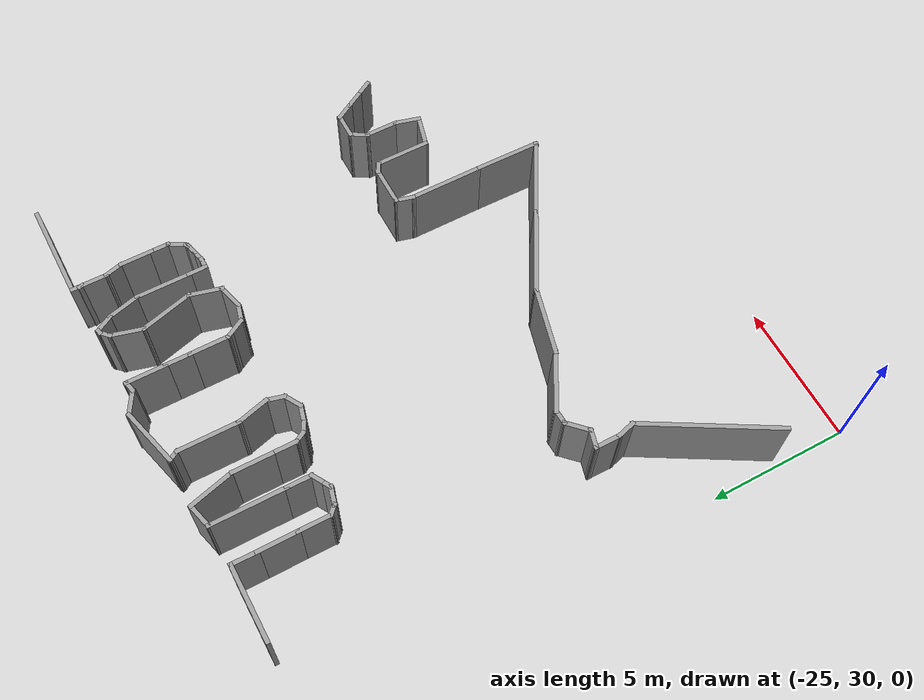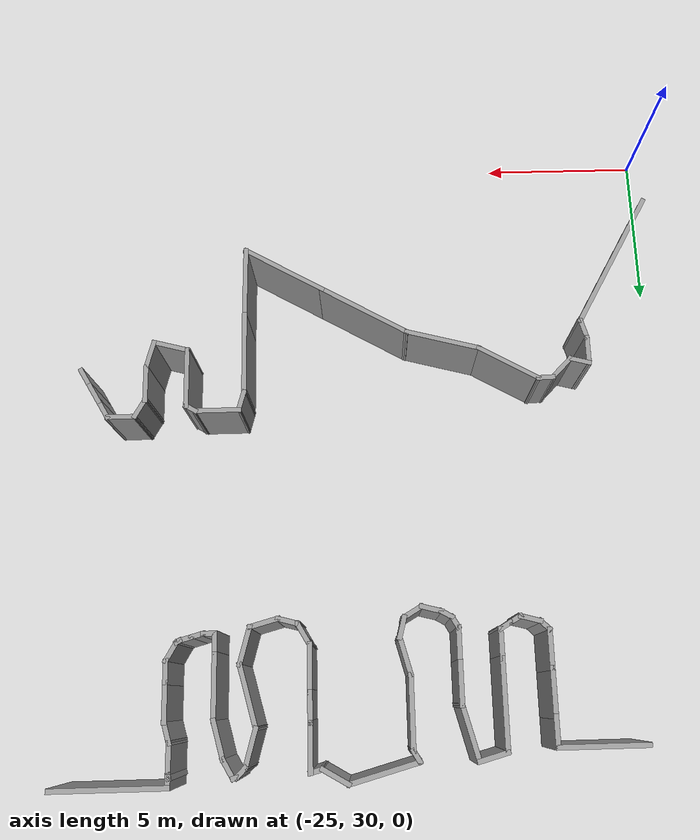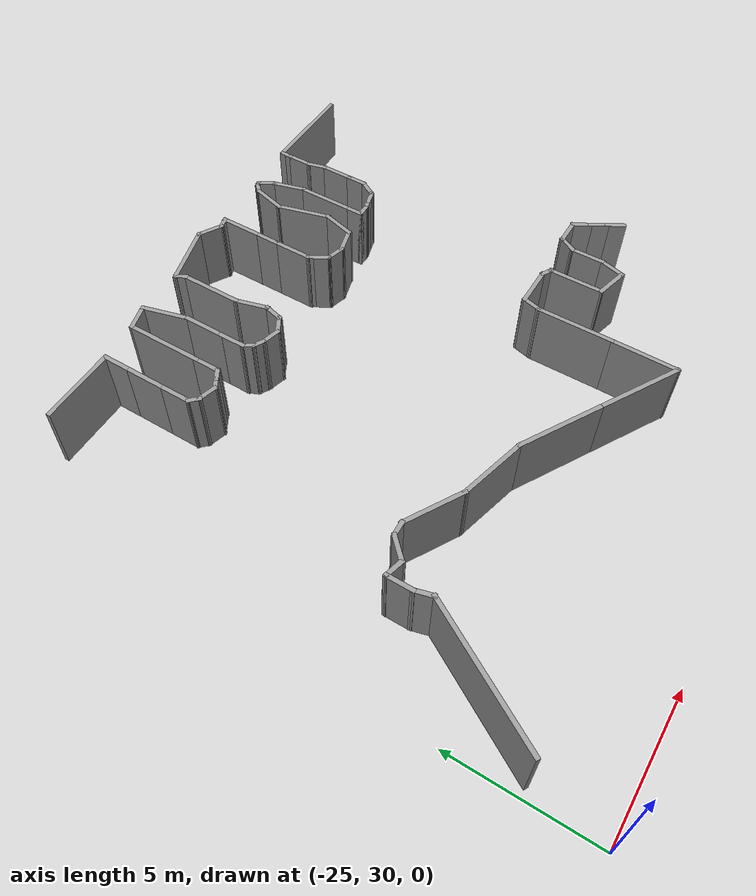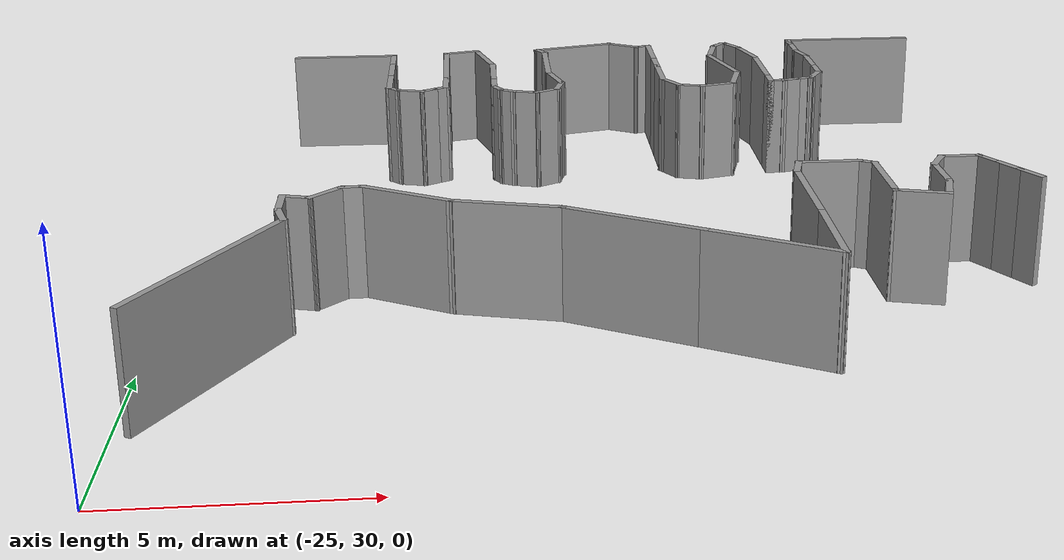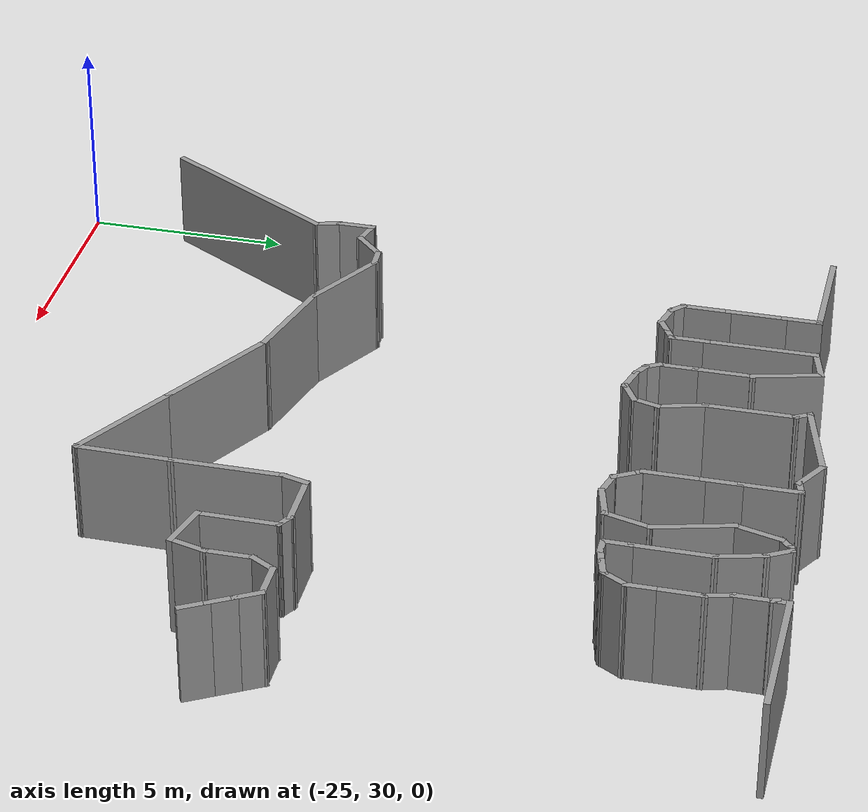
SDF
<sdf version="1.7">
 <model name="office_track1">
  <pose>2.3626 4.43866 0 0 -0 0</pose>
  <link name="Wall_265">
   <collision name="Wall_265_Collision">
    <geometry><box><size>0.75 0.15 2.5</size></box></geometry>
    <pose>0 0 1.25 0 -0 0</pose>
   </collision>
   <visual name="Wall_265_Visual">
    <pose>0 0 1.25 0 -0 0</pose>
    <geometry><box><size>0.75 0.15 2.5</size></box></geometry>
    <material>
     <script><uri>file://media/materials/scripts/gazebo.material</uri><name>Gazebo/Grey</name></script>
     <ambient>1 1 1 1</ambient>
    </material>
    <meta><layer>0</layer></meta>
   </visual>
   <pose>-8.85327 33.8795 0 0 -0 2.0944</pose>
  </link>
  <link name="Wall_266">
   <collision name="Wall_266_Collision">
    <geometry><box><size>0.75 0.15 2.5</size></box></geometry>
    <pose>0 0 1.25 0 -0 0</pose>
   </collision>
   <visual name="Wall_266_Visual">
    <pose>0 0 1.25 0 -0 0</pose>
    <geometry><box><size>0.75 0.15 2.5</size></box></geometry>
    <material>
     <script><uri>file://media/materials/scripts/gazebo.material</uri><name>Gazebo/Grey</name></script>
     <ambient>1 1 1 1</ambient>
    </material>
    <meta><layer>0</layer></meta>
   </visual>
   <pose>-9.15327 34.3991 0 0 -0 2.0944</pose>
  </link>
  <link name="Wall_267">
   <collision name="Wall_267_Collision">
    <geometry><box><size>0.75 0.15 2.5</size></box></geometry>
    <pose>0 0 1.25 0 -0 0</pose>
   </collision>
   <visual name="Wall_267_Visual">
    <pose>0 0 1.25 0 -0 0</pose>
    <geometry><box><size>0.75 0.15 2.5</size></box></geometry>
    <material>
     <script><uri>file://media/materials/scripts/gazebo.material</uri><name>Gazebo/Grey</name></script>
     <ambient>1 1 1 1</ambient>
    </material>
    <meta><layer>0</layer></meta>
   </visual>
   <pose>-9.45327 34.9187 0 0 -0 2.0944</pose>
  </link>
  <link name="Wall_268">
   <collision name="Wall_268_Collision">
    <geometry><box><size>1 0.15 2.5</size></box></geometry>
    <pose>0 0 1.25 0 -0 0</pose>
   </collision>
   <visual name="Wall_268_Visual">
    <pose>0 0 1.25 0 -0 0</pose>
    <geometry><box><size>1 0.15 2.5</size></box></geometry>
    <material>
     <script><uri>file://media/materials/scripts/gazebo.material</uri><name>Gazebo/Grey</name></script>
     <ambient>1 1 1 1</ambient>
    </material>
    <meta><layer>0</layer></meta>
   </visual>
   <pose>-10.0283 35.1785 0 0 -0 3.14159</pose>
  </link>
  <link name="Wall_269">
   <collision name="Wall_269_Collision">
    <geometry><box><size>0.75 0.15 2.5</size></box></geometry>
    <pose>0 0 1.25 0 -0 0</pose>
   </collision>
   <visual name="Wall_269_Visual">
    <pose>0 0 1.25 0 -0 0</pose>
    <geometry><box><size>0.75 0.15 2.5</size></box></geometry>
    <material>
     <script><uri>file://media/materials/scripts/gazebo.material</uri><name>Gazebo/Grey</name></script>
     <ambient>1 1 1 1</ambient>
    </material>
    <meta><layer>0</layer></meta>
   </visual>
   <pose>-10.6033 34.9187 0 0 -0 -2.0944</pose>
  </link>
  <link name="Wall_270">
   <collision name="Wall_270_Collision">
    <geometry><box><size>1.25 0.15 2.5</size></box></geometry>
    <pose>0 0 1.25 0 -0 0</pose>
   </collision>
   <visual name="Wall_270_Visual">
    <pose>0 0 1.25 0 -0 0</pose>
    <geometry><box><size>1.25 0.15 2.5</size></box></geometry>
    <material>
     <script><uri>file://media/materials/scripts/gazebo.material</uri><name>Gazebo/Grey</name></script>
     <ambient>1 1 1 1</ambient>
    </material>
    <meta><layer>0</layer></meta>
   </visual>
   <pose>-10.7533 34.1089 0 0 -0 -1.5708</pose>
  </link>
  <link name="Wall_271">
   <collision name="Wall_271_Collision">
    <geometry><box><size>1 0.15 2.5</size></box></geometry>
    <pose>0 0 1.25 0 -0 0</pose>
   </collision>
   <visual name="Wall_271_Visual">
    <pose>0 0 1.25 0 -0 0</pose>
    <geometry><box><size>1 0.15 2.5</size></box></geometry>
    <material>
     <script><uri>file://media/materials/scripts/gazebo.material</uri><name>Gazebo/Grey</name></script>
     <ambient>1 1 1 1</ambient>
    </material>
    <meta><layer>0</layer></meta>
   </visual>
   <pose>-10.8633 33.1484 0 0 -0 -1.8326</pose>
  </link>
  <link name="Wall_272">
   <collision name="Wall_272_Collision">
    <geometry><box><size>1.25 0.15 2.5</size></box></geometry>
    <pose>0 0 1.25 0 -0 0</pose>
   </collision>
   <visual name="Wall_272_Visual">
    <pose>0 0 1.25 0 -0 0</pose>
    <geometry><box><size>1.25 0.15 2.5</size></box></geometry>
    <material>
     <script><uri>file://media/materials/scripts/gazebo.material</uri><name>Gazebo/Grey</name></script>
     <ambient>1 1 1 1</ambient>
    </material>
    <meta><layer>0</layer></meta>
   </visual>
   <pose>-11.5045 32.8802 0 0 -0 2.87979</pose>
  </link>
  <link name="Wall_273">
   <collision name="Wall_273_Collision">
    <geometry><box><size>2 0.15 2.5</size></box></geometry>
    <pose>0 0 1.25 0 -0 0</pose>
   </collision>
   <visual name="Wall_273_Visual">
    <pose>0 0 1.25 0 -0 0</pose>
    <geometry><box><size>2 0.15 2.5</size></box></geometry>
    <material>
     <script><uri>file://media/materials/scripts/gazebo.material</uri><name>Gazebo/Grey</name></script>
     <ambient>1 1 1 1</ambient>
    </material>
    <meta><layer>0</layer></meta>
   </visual>
   <pose>-12.0358 33.9476 0 0 -0 1.5708</pose>
  </link>
  <link name="Wall_274">
   <collision name="Wall_274_Collision">
    <geometry><box><size>0.5 0.15 2.5</size></box></geometry>
    <pose>0 0 1.25 0 -0 0</pose>
   </collision>
   <visual name="Wall_274_Visual">
    <pose>0 0 1.25 0 -0 0</pose>
    <geometry><box><size>0.5 0.15 2.5</size></box></geometry>
    <material>
     <script><uri>file://media/materials/scripts/gazebo.material</uri><name>Gazebo/Grey</name></script>
     <ambient>1 1 1 1</ambient>
    </material>
    <meta><layer>0</layer></meta>
   </visual>
   <pose>-12.1873 34.9601 0 0 -0 2.61799</pose>
  </link>
  <link name="Wall_275">
   <collision name="Wall_275_Collision">
    <geometry><box><size>1.5 0.15 2.5</size></box></geometry>
    <pose>0 0 1.25 0 -0 0</pose>
   </collision>
   <visual name="Wall_275_Visual">
    <pose>0 0 1.25 0 -0 0</pose>
    <geometry><box><size>1.5 0.15 2.5</size></box></geometry>
    <material>
     <script><uri>file://media/materials/scripts/gazebo.material</uri><name>Gazebo/Grey</name></script>
     <ambient>1 1 1 1</ambient>
    </material>
    <meta><layer>0</layer></meta>
   </visual>
   <pose>-13.0139 35.0476 0 0 -0 3.14159</pose>
  </link>
  <link name="Wall_276">
   <collision name="Wall_276_Collision">
    <geometry><box><size>0.75 0.15 2.5</size></box></geometry>
    <pose>0 0 1.25 0 -0 0</pose>
   </collision>
   <visual name="Wall_276_Visual">
    <pose>0 0 1.25 0 -0 0</pose>
    <geometry><box><size>0.75 0.15 2.5</size></box></geometry>
    <material>
     <script><uri>file://media/materials/scripts/gazebo.material</uri><name>Gazebo/Grey</name></script>
     <ambient>1 1 1 1</ambient>
    </material>
    <meta><layer>0</layer></meta>
   </visual>
   <pose>-13.7665 34.7578 0 0 -0 -1.8326</pose>
  </link>
  <link name="Wall_277">
   <collision name="Wall_277_Collision">
    <geometry><box><size>2.75 0.15 2.5</size></box></geometry>
    <pose>0 0 1.25 0 -0 0</pose>
   </collision>
   <visual name="Wall_277_Visual">
    <pose>0 0 1.25 0 -0 0</pose>
    <geometry><box><size>2.75 0.15 2.5</size></box></geometry>
    <material>
     <script><uri>file://media/materials/scripts/gazebo.material</uri><name>Gazebo/Grey</name></script>
     <ambient>1 1 1 1</ambient>
    </material>
    <meta><layer>0</layer></meta>
   </visual>
   <pose>-13.8442 33.168 0 0 -0 -1.5708</pose>
  </link>
  <link name="Wall_279">
   <collision name="Wall_279_Collision">
    <geometry><box><size>2.25 0.15 2.5</size></box></geometry>
    <pose>0 0 1.25 0 -0 0</pose>
   </collision>
   <visual name="Wall_279_Visual">
    <pose>0 0 1.25 0 -0 0</pose>
    <geometry><box><size>2.25 0.15 2.5</size></box></geometry>
    <material>
     <script><uri>file://media/materials/scripts/gazebo.material</uri><name>Gazebo/Grey</name></script>
     <ambient>1 1 1 1</ambient>
    </material>
    <meta><layer>0</layer></meta>
   </visual>
   <pose>-22.2025 33.7263 0 0 -0 -0.523599</pose>
  </link>
  <link name="Wall_280">
   <collision name="Wall_280_Collision">
    <geometry><box><size>2.5 0.15 2.5</size></box></geometry>
    <pose>0 0 1.25 0 -0 0</pose>
   </collision>
   <visual name="Wall_280_Visual">
    <pose>0 0 1.25 0 -0 0</pose>
    <geometry><box><size>2.5 0.15 2.5</size></box></geometry>
    <material>
     <script><uri>file://media/materials/scripts/gazebo.material</uri><name>Gazebo/Grey</name></script>
     <ambient>1 1 1 1</ambient>
    </material>
    <meta><layer>0</layer></meta>
   </visual>
   <pose>-20.1582 32.8972 0 0 -0 -0.261799</pose>
  </link>
  <link name="Wall_281">
   <collision name="Wall_281_Collision">
    <geometry><box><size>3.25 0.15 2.5</size></box></geometry>
    <pose>0 0 1.25 0 -0 0</pose>
   </collision>
   <visual name="Wall_281_Visual">
    <pose>0 0 1.25 0 -0 0</pose>
    <geometry><box><size>3.25 0.15 2.5</size></box></geometry>
    <material>
     <script><uri>file://media/materials/scripts/gazebo.material</uri><name>Gazebo/Grey</name></script>
     <ambient>1 1 1 1</ambient>
    </material>
    <meta><layer>0</layer></meta>
   </visual>
   <pose>-17.6809 31.8181 0 0 -0 -0.523599</pose>
  </link>
  <link name="Wall_282">
   <collision name="Wall_282_Collision">
    <geometry><box><size>3 0.15 2.5</size></box></geometry>
    <pose>0 0 1.25 0 -0 0</pose>
   </collision>
   <visual name="Wall_282_Visual">
    <pose>0 0 1.25 0 -0 0</pose>
    <geometry><box><size>3 0.15 2.5</size></box></geometry>
    <material>
     <script><uri>file://media/materials/scripts/gazebo.material</uri><name>Gazebo/Grey</name></script>
     <ambient>1 1 1 1</ambient>
    </material>
    <meta><layer>0</layer></meta>
   </visual>
   <pose>-15.1045 30.3306 0 0 -0 -0.523599</pose>
  </link>
  <link name="Wall_283">
   <collision name="Wall_283_Collision">
    <geometry><box><size>2.40014 0.15 2.5</size></box></geometry>
    <pose>0 0 1.25 0 -0 0</pose>
   </collision>
   <visual name="Wall_283_Visual">
    <pose>0 0 1.25 0 -0 0</pose>
    <geometry><box><size>2.40014 0.15 2.5</size></box></geometry>
    <material>
     <script><uri>file://media/materials/scripts/gazebo.material</uri><name>Gazebo/Grey</name></script>
     <ambient>1 1 1 1</ambient>
    </material>
    <meta><layer>0</layer></meta>
   </visual>
   <pose>-13.8573 30.743 0 0 -0 1.55914</pose>
  </link>
  <link name="Wall_285">
   <collision name="Wall_285_Collision">
    <geometry><box><size>5 0.15 2.5</size></box></geometry>
    <pose>0 0 1.25 0 -0 0</pose>
   </collision>
   <visual name="Wall_285_Visual">
    <pose>0 0 1.25 0 -0 0</pose>
    <geometry><box><size>5 0.15 2.5</size></box></geometry>
    <material>
     <script><uri>file://media/materials/scripts/gazebo.material</uri><name>Gazebo/Grey</name></script>
     <ambient>1 1 1 1</ambient>
    </material>
    <meta><layer>0</layer></meta>
   </visual>
   <pose>-25.8096 30.2599 0 0 -0 1.0472</pose>
  </link>
  <link name="Wall_286">
   <collision name="Wall_286_Collision">
    <geometry><box><size>0.75 0.15 2.5</size></box></geometry>
    <pose>0 0 1.25 0 -0 0</pose>
   </collision>
   <visual name="Wall_286_Visual">
    <pose>0 0 1.25 0 -0 0</pose>
    <geometry><box><size>0.75 0.15 2.5</size></box></geometry>
    <material>
     <script><uri>file://media/materials/scripts/gazebo.material</uri><name>Gazebo/Grey</name></script>
     <ambient>1 1 1 1</ambient>
    </material>
    <meta><layer>0</layer></meta>
   </visual>
   <pose>-24.6747 32.6498 0 0 -0 1.8326</pose>
  </link>
  <link name="Wall_287">
   <collision name="Wall_287_Collision">
    <geometry><box><size>1 0.15 2.5</size></box></geometry>
    <pose>0 0 1.25 0 -0 0</pose>
   </collision>
   <visual name="Wall_287_Visual">
    <pose>0 0 1.25 0 -0 0</pose>
    <geometry><box><size>1 0.15 2.5</size></box></geometry>
    <material>
     <script><uri>file://media/materials/scripts/gazebo.material</uri><name>Gazebo/Grey</name></script>
     <ambient>1 1 1 1</ambient>
    </material>
    <meta><layer>0</layer></meta>
   </visual>
   <pose>-24.7524 33.3646 0 0 -0 1.5708</pose>
  </link>
  <link name="Wall_288">
   <collision name="Wall_288_Collision">
    <geometry><box><size>0.75 0.15 2.5</size></box></geometry>
    <pose>0 0 1.25 0 -0 0</pose>
   </collision>
   <visual name="Wall_288_Visual">
    <pose>0 0 1.25 0 -0 0</pose>
    <geometry><box><size>0.75 0.15 2.5</size></box></geometry>
    <material>
     <script><uri>file://media/materials/scripts/gazebo.material</uri><name>Gazebo/Grey</name></script>
     <ambient>1 1 1 1</ambient>
    </material>
    <meta><layer>0</layer></meta>
   </visual>
   <pose>-24.4626 33.712 0 0 -0 -0.261799</pose>
  </link>
  <link name="Wall_289">
   <collision name="Wall_289_Collision">
    <geometry><box><size>1 0.15 2.5</size></box></geometry>
    <pose>0 0 1.25 0 -0 0</pose>
   </collision>
   <visual name="Wall_289_Visual">
    <pose>0 0 1.25 0 -0 0</pose>
    <geometry><box><size>1 0.15 2.5</size></box></geometry>
    <material>
     <script><uri>file://media/materials/scripts/gazebo.material</uri><name>Gazebo/Grey</name></script>
     <ambient>1 1 1 1</ambient>
    </material>
    <meta><layer>0</layer></meta>
   </visual>
   <pose>-23.8723 33.9348 0 0 -0 0.785398</pose>
  </link>
  <link name="Wall_290">
   <collision name="Wall_290_Collision">
    <geometry><box><size>0.6102 0.15 2.5</size></box></geometry>
    <pose>0 0 1.25 0 -0 0</pose>
   </collision>
   <visual name="Wall_290_Visual">
    <pose>0 0 1.25 0 -0 0</pose>
    <geometry><box><size>0.6102 0.15 2.5</size></box></geometry>
    <material>
     <script><uri>file://media/materials/scripts/gazebo.material</uri><name>Gazebo/Grey</name></script>
     <ambient>1 1 1 1</ambient>
    </material>
    <meta><layer>0</layer></meta>
   </visual>
   <pose>-23.3418 34.2433 0 0 -0 0.034595</pose>
  </link>
  <link name="Wall_608">
   <collision name="Wall_608_Collision">
    <geometry><box><size>2.75 0.15 2.5</size></box></geometry>
    <pose>0 0 1.25 0 -0 0</pose>
   </collision>
   <visual name="Wall_608_Visual">
    <pose>0 0 1.25 0 -0 0</pose>
    <geometry><box><size>2.75 0.15 2.5</size></box></geometry>
    <material>
     <script><uri>file://media/materials/scripts/gazebo.material</uri><name>Gazebo/Grey</name></script>
     <ambient>1 1 1 1</ambient>
    </material>
    <meta><layer>0</layer></meta>
   </visual>
   <pose>-24.1735 45.3125 0 0 -0 0</pose>
  </link>
  <link name="Wall_609">
   <collision name="Wall_609_Collision">
    <geometry><box><size>1 0.15 2.5</size></box></geometry>
    <pose>0 0 1.25 0 -0 0</pose>
   </collision>
   <visual name="Wall_609_Visual">
    <pose>0 0 1.25 0 -0 0</pose>
    <geometry><box><size>1 0.15 2.5</size></box></geometry>
    <material>
     <script><uri>file://media/materials/scripts/gazebo.material</uri><name>Gazebo/Grey</name></script>
     <ambient>1 1 1 1</ambient>
    </material>
    <meta><layer>0</layer></meta>
   </visual>
   <pose>-22.8735 44.8875 0 0 -0 -1.5708</pose>
  </link>
  <link name="Wall_610">
   <collision name="Wall_610_Collision">
    <geometry><box><size>1.5 0.15 2.5</size></box></geometry>
    <pose>0 0 1.25 0 -0 0</pose>
   </collision>
   <visual name="Wall_610_Visual">
    <pose>0 0 1.25 0 -0 0</pose>
    <geometry><box><size>1.5 0.15 2.5</size></box></geometry>
    <material>
     <script><uri>file://media/materials/scripts/gazebo.material</uri><name>Gazebo/Grey</name></script>
     <ambient>1 1 1 1</ambient>
    </material>
    <meta><layer>0</layer></meta>
   </visual>
   <pose>-22.8735 43.7875 0 0 -0 -1.5708</pose>
  </link>
  <link name="Wall_611">
   <collision name="Wall_611_Collision">
    <geometry><box><size>1.25 0.15 2.5</size></box></geometry>
    <pose>0 0 1.25 0 -0 0</pose>
   </collision>
   <visual name="Wall_611_Visual">
    <pose>0 0 1.25 0 -0 0</pose>
    <geometry><box><size>1.25 0.15 2.5</size></box></geometry>
    <material>
     <script><uri>file://media/materials/scripts/gazebo.material</uri><name>Gazebo/Grey</name></script>
     <ambient>1 1 1 1</ambient>
    </material>
    <meta><layer>0</layer></meta>
   </visual>
   <pose>-22.8735 42.5625 0 0 -0 -1.5708</pose>
  </link>
  <link name="Wall_612">
   <collision name="Wall_612_Collision">
    <geometry><box><size>0.5 0.15 2.5</size></box></geometry>
    <pose>0 0 1.25 0 -0 0</pose>
   </collision>
   <visual name="Wall_612_Visual">
    <pose>0 0 1.25 0 -0 0</pose>
    <geometry><box><size>0.5 0.15 2.5</size></box></geometry>
    <material>
     <script><uri>file://media/materials/scripts/gazebo.material</uri><name>Gazebo/Grey</name></script>
     <ambient>1 1 1 1</ambient>
    </material>
    <meta><layer>0</layer></meta>
   </visual>
   <pose>-22.7497 41.8887 0 0 -0 -0.785398</pose>
  </link>
  <link name="Wall_613">
   <collision name="Wall_613_Collision">
    <geometry><box><size>0.75 0.15 2.5</size></box></geometry>
    <pose>0 0 1.25 0 -0 0</pose>
   </collision>
   <visual name="Wall_613_Visual">
    <pose>0 0 1.25 0 -0 0</pose>
    <geometry><box><size>0.75 0.15 2.5</size></box></geometry>
    <material>
     <script><uri>file://media/materials/scripts/gazebo.material</uri><name>Gazebo/Grey</name></script>
     <ambient>1 1 1 1</ambient>
    </material>
    <meta><layer>0</layer></meta>
   </visual>
   <pose>-22.3362 41.6873 0 0 -0 -0.261799</pose>
  </link>
  <link name="Wall_614">
   <collision name="Wall_614_Collision">
    <geometry><box><size>0.5 0.15 2.5</size></box></geometry>
    <pose>0 0 1.25 0 -0 0</pose>
   </collision>
   <visual name="Wall_614_Visual">
    <pose>0 0 1.25 0 -0 0</pose>
    <geometry><box><size>0.5 0.15 2.5</size></box></geometry>
    <material>
     <script><uri>file://media/materials/scripts/gazebo.material</uri><name>Gazebo/Grey</name></script>
     <ambient>1 1 1 1</ambient>
    </material>
    <meta><layer>0</layer></meta>
   </visual>
   <pose>-21.8949 41.6972 0 0 -0 0.523599</pose>
  </link>
  <link name="Wall_615">
   <collision name="Wall_615_Collision">
    <geometry><box><size>0.5 0.15 2.5</size></box></geometry>
    <pose>0 0 1.25 0 -0 0</pose>
   </collision>
   <visual name="Wall_615_Visual">
    <pose>0 0 1.25 0 -0 0</pose>
    <geometry><box><size>0.5 0.15 2.5</size></box></geometry>
    <material>
     <script><uri>file://media/materials/scripts/gazebo.material</uri><name>Gazebo/Grey</name></script>
     <ambient>1 1 1 1</ambient>
    </material>
    <meta><layer>0</layer></meta>
   </visual>
   <pose>-21.5918 41.8722 0 0 -0 0.523599</pose>
  </link>
  <link name="Wall_616">
   <collision name="Wall_616_Collision">
    <geometry><box><size>1 0.15 2.5</size></box></geometry>
    <pose>0 0 1.25 0 -0 0</pose>
   </collision>
   <visual name="Wall_616_Visual">
    <pose>0 0 1.25 0 -0 0</pose>
    <geometry><box><size>1 0.15 2.5</size></box></geometry>
    <material>
     <script><uri>file://media/materials/scripts/gazebo.material</uri><name>Gazebo/Grey</name></script>
     <ambient>1 1 1 1</ambient>
    </material>
    <meta><layer>0</layer></meta>
   </visual>
   <pose>-21.4402 42.3847 0 0 -0 1.5708</pose>
  </link>
  <link name="Wall_617">
   <collision name="Wall_617_Collision">
    <geometry><box><size>2.75 0.15 2.5</size></box></geometry>
    <pose>0 0 1.25 0 -0 0</pose>
   </collision>
   <visual name="Wall_617_Visual">
    <pose>0 0 1.25 0 -0 0</pose>
    <geometry><box><size>2.75 0.15 2.5</size></box></geometry>
    <material>
     <script><uri>file://media/materials/scripts/gazebo.material</uri><name>Gazebo/Grey</name></script>
     <ambient>1 1 1 1</ambient>
    </material>
    <meta><layer>0</layer></meta>
   </visual>
   <pose>-21.4402 44.1097 0 0 -0 1.5708</pose>
  </link>
  <link name="Wall_618">
   <collision name="Wall_618_Collision">
    <geometry><box><size>1 0.15 2.5</size></box></geometry>
    <pose>0 0 1.25 0 -0 0</pose>
   </collision>
   <visual name="Wall_618_Visual">
    <pose>0 0 1.25 0 -0 0</pose>
    <geometry><box><size>1 0.15 2.5</size></box></geometry>
    <material>
     <script><uri>file://media/materials/scripts/gazebo.material</uri><name>Gazebo/Grey</name></script>
     <ambient>1 1 1 1</ambient>
    </material>
    <meta><layer>0</layer></meta>
   </visual>
   <pose>-21.0297 45.5197 0 0 -0 0.261799</pose>
  </link>
  <link name="Wall_619">
   <collision name="Wall_619_Collision">
    <geometry><box><size>1.75 0.15 2.5</size></box></geometry>
    <pose>0 0 1.25 0 -0 0</pose>
   </collision>
   <visual name="Wall_619_Visual">
    <pose>0 0 1.25 0 -0 0</pose>
    <geometry><box><size>1.75 0.15 2.5</size></box></geometry>
    <material>
     <script><uri>file://media/materials/scripts/gazebo.material</uri><name>Gazebo/Grey</name></script>
     <ambient>1 1 1 1</ambient>
    </material>
    <meta><layer>0</layer></meta>
   </visual>
   <pose>-20.4121 44.8569 0 0 -0 -1.309</pose>
  </link>
  <link name="Wall_620">
   <collision name="Wall_620_Collision">
    <geometry><box><size>1.5 0.15 2.5</size></box></geometry>
    <pose>0 0 1.25 0 -0 0</pose>
   </collision>
   <visual name="Wall_620_Visual">
    <pose>0 0 1.25 0 -0 0</pose>
    <geometry><box><size>1.5 0.15 2.5</size></box></geometry>
    <material>
     <script><uri>file://media/materials/scripts/gazebo.material</uri><name>Gazebo/Grey</name></script>
     <ambient>1 1 1 1</ambient>
    </material>
    <meta><layer>0</layer></meta>
   </visual>
   <pose>-20.2051 43.4092 0 0 -0 -1.5708</pose>
  </link>
  <link name="Wall_621">
   <collision name="Wall_621_Collision">
    <geometry><box><size>1 0.15 2.5</size></box></geometry>
    <pose>0 0 1.25 0 -0 0</pose>
   </collision>
   <visual name="Wall_621_Visual">
    <pose>0 0 1.25 0 -0 0</pose>
    <geometry><box><size>1 0.15 2.5</size></box></geometry>
    <material>
     <script><uri>file://media/materials/scripts/gazebo.material</uri><name>Gazebo/Grey</name></script>
     <ambient>1 1 1 1</ambient>
    </material>
    <meta><layer>0</layer></meta>
   </visual>
   <pose>-20.2051 42.3092 0 0 -0 -1.5708</pose>
  </link>
  <link name="Wall_622">
   <collision name="Wall_622_Collision">
    <geometry><box><size>0.5 0.15 2.5</size></box></geometry>
    <pose>0 0 1.25 0 -0 0</pose>
   </collision>
   <visual name="Wall_622_Visual">
    <pose>0 0 1.25 0 -0 0</pose>
    <geometry><box><size>0.5 0.15 2.5</size></box></geometry>
    <material>
     <script><uri>file://media/materials/scripts/gazebo.material</uri><name>Gazebo/Grey</name></script>
     <ambient>1 1 1 1</ambient>
    </material>
    <meta><layer>0</layer></meta>
   </visual>
   <pose>-20.1176 41.7326 0 0 -0 -1.0472</pose>
  </link>
  <link name="Wall_623">
   <collision name="Wall_623_Collision">
    <geometry><box><size>0.5 0.15 2.5</size></box></geometry>
    <pose>0 0 1.25 0 -0 0</pose>
   </collision>
   <visual name="Wall_623_Visual">
    <pose>0 0 1.25 0 -0 0</pose>
    <geometry><box><size>0.5 0.15 2.5</size></box></geometry>
    <material>
     <script><uri>file://media/materials/scripts/gazebo.material</uri><name>Gazebo/Grey</name></script>
     <ambient>1 1 1 1</ambient>
    </material>
    <meta><layer>0</layer></meta>
   </visual>
   <pose>-19.8785 41.4936 0 0 -0 -0.523599</pose>
  </link>
  <link name="Wall_624">
   <collision name="Wall_624_Collision">
    <geometry><box><size>0.75 0.15 2.5</size></box></geometry>
    <pose>0 0 1.25 0 -0 0</pose>
   </collision>
   <visual name="Wall_624_Visual">
    <pose>0 0 1.25 0 -0 0</pose>
    <geometry><box><size>0.75 0.15 2.5</size></box></geometry>
    <material>
     <script><uri>file://media/materials/scripts/gazebo.material</uri><name>Gazebo/Grey</name></script>
     <ambient>1 1 1 1</ambient>
    </material>
    <meta><layer>0</layer></meta>
   </visual>
   <pose>-19.4372 41.3284 0 0 -0 -0.261799</pose>
  </link>
  <link name="Wall_625">
   <collision name="Wall_625_Collision">
    <geometry><box><size>0.75 0.15 2.5</size></box></geometry>
    <pose>0 0 1.25 0 -0 0</pose>
   </collision>
   <visual name="Wall_625_Visual">
    <pose>0 0 1.25 0 -0 0</pose>
    <geometry><box><size>0.75 0.15 2.5</size></box></geometry>
    <material>
     <script><uri>file://media/materials/scripts/gazebo.material</uri><name>Gazebo/Grey</name></script>
     <ambient>1 1 1 1</ambient>
    </material>
    <meta><layer>0</layer></meta>
   </visual>
   <pose>-18.8876 41.4008 0 0 -0 0.523599</pose>
  </link>
  <link name="Wall_626">
   <collision name="Wall_626_Collision">
    <geometry><box><size>0.75 0.15 2.5</size></box></geometry>
    <pose>0 0 1.25 0 -0 0</pose>
   </collision>
   <visual name="Wall_626_Visual">
    <pose>0 0 1.25 0 -0 0</pose>
    <geometry><box><size>0.75 0.15 2.5</size></box></geometry>
    <material>
     <script><uri>file://media/materials/scripts/gazebo.material</uri><name>Gazebo/Grey</name></script>
     <ambient>1 1 1 1</ambient>
    </material>
    <meta><layer>0</layer></meta>
   </visual>
   <pose>-18.5501 41.8406 0 0 -0 1.309</pose>
  </link>
  <link name="Wall_627">
   <collision name="Wall_627_Collision">
    <geometry><box><size>1.25 0.15 2.5</size></box></geometry>
    <pose>0 0 1.25 0 -0 0</pose>
   </collision>
   <visual name="Wall_627_Visual">
    <pose>0 0 1.25 0 -0 0</pose>
    <geometry><box><size>1.25 0.15 2.5</size></box></geometry>
    <material>
     <script><uri>file://media/materials/scripts/gazebo.material</uri><name>Gazebo/Grey</name></script>
     <ambient>1 1 1 1</ambient>
    </material>
    <meta><layer>0</layer></meta>
   </visual>
   <pose>-18.6148 42.6616 0 0 -0 1.8326</pose>
  </link>
  <link name="Wall_628">
   <collision name="Wall_628_Collision">
    <geometry><box><size>2.25 0.15 2.5</size></box></geometry>
    <pose>0 0 1.25 0 -0 0</pose>
   </collision>
   <visual name="Wall_628_Visual">
    <pose>0 0 1.25 0 -0 0</pose>
    <geometry><box><size>2.25 0.15 2.5</size></box></geometry>
    <material>
     <script><uri>file://media/materials/scripts/gazebo.material</uri><name>Gazebo/Grey</name></script>
     <ambient>1 1 1 1</ambient>
    </material>
    <meta><layer>0</layer></meta>
   </visual>
   <pose>-18.7572 44.2429 0 0 -0 1.5708</pose>
  </link>
  <link name="Wall_629">
   <collision name="Wall_629_Collision">
    <geometry><box><size>0.5 0.15 2.5</size></box></geometry>
    <pose>0 0 1.25 0 -0 0</pose>
   </collision>
   <visual name="Wall_629_Visual">
    <pose>0 0 1.25 0 -0 0</pose>
    <geometry><box><size>0.5 0.15 2.5</size></box></geometry>
    <material>
     <script><uri>file://media/materials/scripts/gazebo.material</uri><name>Gazebo/Grey</name></script>
     <ambient>1 1 1 1</ambient>
    </material>
    <meta><layer>0</layer></meta>
   </visual>
   <pose>-18.8447 45.4444 0 0 -0 2.0944</pose>
  </link>
  <link name="Wall_630">
   <collision name="Wall_630_Collision">
    <geometry><box><size>2.25 0.15 2.5</size></box></geometry>
    <pose>0 0 1.25 0 -0 0</pose>
   </collision>
   <visual name="Wall_630_Visual">
    <pose>0 0 1.25 0 -0 0</pose>
    <geometry><box><size>2.25 0.15 2.5</size></box></geometry>
    <material>
     <script><uri>file://media/materials/scripts/gazebo.material</uri><name>Gazebo/Grey</name></script>
     <ambient>1 1 1 1</ambient>
    </material>
    <meta><layer>0</layer></meta>
   </visual>
   <pose>-17.918 45.8677 0 0 -0 0.261799</pose>
  </link>
  <link name="Wall_631">
   <collision name="Wall_631_Collision">
    <geometry><box><size>1 0.15 2.5</size></box></geometry>
    <pose>0 0 1.25 0 -0 0</pose>
   </collision>
   <visual name="Wall_631_Visual">
    <pose>0 0 1.25 0 -0 0</pose>
    <geometry><box><size>1 0.15 2.5</size></box></geometry>
    <material>
     <script><uri>file://media/materials/scripts/gazebo.material</uri><name>Gazebo/Grey</name></script>
     <ambient>1 1 1 1</ambient>
    </material>
    <meta><layer>0</layer></meta>
   </visual>
   <pose>-16.5357 45.927 0 0 -0 -0.523599</pose>
  </link>
  <link name="Wall_632">
   <collision name="Wall_632_Collision">
    <geometry><box><size>0.5 0.15 2.5</size></box></geometry>
    <pose>0 0 1.25 0 -0 0</pose>
   </collision>
   <visual name="Wall_632_Visual">
    <pose>0 0 1.25 0 -0 0</pose>
    <geometry><box><size>0.5 0.15 2.5</size></box></geometry>
    <material>
     <script><uri>file://media/materials/scripts/gazebo.material</uri><name>Gazebo/Grey</name></script>
     <ambient>1 1 1 1</ambient>
    </material>
    <meta><layer>0</layer></meta>
   </visual>
   <pose>-15.9986 45.7598 0 0 -0 0.261799</pose>
  </link>
  <link name="Wall_633">
   <collision name="Wall_633_Collision">
    <geometry><box><size>1.5 0.15 2.5</size></box></geometry>
    <pose>0 0 1.25 0 -0 0</pose>
   </collision>
   <visual name="Wall_633_Visual">
    <pose>0 0 1.25 0 -0 0</pose>
    <geometry><box><size>1.5 0.15 2.5</size></box></geometry>
    <material>
     <script><uri>file://media/materials/scripts/gazebo.material</uri><name>Gazebo/Grey</name></script>
     <ambient>1 1 1 1</ambient>
    </material>
    <meta><layer>0</layer></meta>
   </visual>
   <pose>-15.8296 45.1301 0 0 -0 -1.5708</pose>
  </link>
  <link name="Wall_634">
   <collision name="Wall_634_Collision">
    <geometry><box><size>1 0.15 2.5</size></box></geometry>
    <pose>0 0 1.25 0 -0 0</pose>
   </collision>
   <visual name="Wall_634_Visual">
    <pose>0 0 1.25 0 -0 0</pose>
    <geometry><box><size>1 0.15 2.5</size></box></geometry>
    <material>
     <script><uri>file://media/materials/scripts/gazebo.material</uri><name>Gazebo/Grey</name></script>
     <ambient>1 1 1 1</ambient>
    </material>
    <meta><layer>0</layer></meta>
   </visual>
   <pose>-15.8296 44.0301 0 0 -0 -1.5708</pose>
  </link>
  <link name="Wall_635">
   <collision name="Wall_635_Collision">
    <geometry><box><size>1.5 0.15 2.5</size></box></geometry>
    <pose>0 0 1.25 0 -0 0</pose>
   </collision>
   <visual name="Wall_635_Visual">
    <pose>0 0 1.25 0 -0 0</pose>
    <geometry><box><size>1.5 0.15 2.5</size></box></geometry>
    <material>
     <script><uri>file://media/materials/scripts/gazebo.material</uri><name>Gazebo/Grey</name></script>
     <ambient>1 1 1 1</ambient>
    </material>
    <meta><layer>0</layer></meta>
   </visual>
   <pose>-15.8296 42.9301 0 0 -0 -1.5708</pose>
  </link>
  <link name="Wall_636">
   <collision name="Wall_636_Collision">
    <geometry><box><size>0.25 0.15 2.5</size></box></geometry>
    <pose>0 0 1.25 0 -0 0</pose>
   </collision>
   <visual name="Wall_636_Visual">
    <pose>0 0 1.25 0 -0 0</pose>
    <geometry><box><size>0.25 0.15 2.5</size></box></geometry>
    <material>
     <script><uri>file://media/materials/scripts/gazebo.material</uri><name>Gazebo/Grey</name></script>
     <ambient>1 1 1 1</ambient>
    </material>
    <meta><layer>0</layer></meta>
   </visual>
   <pose>-15.8046 42.2118 0 0 -0 -1.0472</pose>
  </link>
  <link name="Wall_637">
   <collision name="Wall_637_Collision">
    <geometry><box><size>0.75 0.15 2.5</size></box></geometry>
    <pose>0 0 1.25 0 -0 0</pose>
   </collision>
   <visual name="Wall_637_Visual">
    <pose>0 0 1.25 0 -0 0</pose>
    <geometry><box><size>0.75 0.15 2.5</size></box></geometry>
    <material>
     <script><uri>file://media/materials/scripts/gazebo.material</uri><name>Gazebo/Grey</name></script>
     <ambient>1 1 1 1</ambient>
    </material>
    <meta><layer>0</layer></meta>
   </visual>
   <pose>-15.6296 41.9087 0 0 -0 -1.0472</pose>
  </link>
  <link name="Wall_638">
   <collision name="Wall_638_Collision">
    <geometry><box><size>0.15 0.15 2.5</size></box></geometry>
    <pose>0 0 1.25 0 -0 0</pose>
   </collision>
   <visual name="Wall_638_Visual">
    <pose>0 0 1.25 0 -0 0</pose>
    <geometry><box><size>0.15 0.15 2.5</size></box></geometry>
    <material>
     <script><uri>file://media/materials/scripts/gazebo.material</uri><name>Gazebo/Grey</name></script>
     <ambient>1 1 1 1</ambient>
    </material>
    <meta><layer>0</layer></meta>
   </visual>
   <pose>-15.4796 41.6489 0 0 -0 0</pose>
  </link>
  <link name="Wall_640">
   <collision name="Wall_640_Collision">
    <geometry><box><size>0.75 0.15 2.5</size></box></geometry>
    <pose>0 0 1.25 0 -0 0</pose>
   </collision>
   <visual name="Wall_640_Visual">
    <pose>0 0 1.25 0 -0 0</pose>
    <geometry><box><size>0.75 0.15 2.5</size></box></geometry>
    <material>
     <script><uri>file://media/materials/scripts/gazebo.material</uri><name>Gazebo/Grey</name></script>
     <ambient>1 1 1 1</ambient>
    </material>
    <meta><layer>0</layer></meta>
   </visual>
   <pose>-15.1898 41.5712 0 0 -0 -0.261799</pose>
  </link>
  <link name="Wall_641">
   <collision name="Wall_641_Collision">
    <geometry><box><size>1 0.15 2.5</size></box></geometry>
    <pose>0 0 1.25 0 -0 0</pose>
   </collision>
   <visual name="Wall_641_Visual">
    <pose>0 0 1.25 0 -0 0</pose>
    <geometry><box><size>1 0.15 2.5</size></box></geometry>
    <material>
     <script><uri>file://media/materials/scripts/gazebo.material</uri><name>Gazebo/Grey</name></script>
     <ambient>1 1 1 1</ambient>
    </material>
    <meta><layer>0</layer></meta>
   </visual>
   <pose>-14.4895 41.6036 0 0 -0 0.261799</pose>
  </link>
  <link name="Wall_642">
   <collision name="Wall_642_Collision">
    <geometry><box><size>1.25 0.15 2.5</size></box></geometry>
    <pose>0 0 1.25 0 -0 0</pose>
   </collision>
   <visual name="Wall_642_Visual">
    <pose>0 0 1.25 0 -0 0</pose>
    <geometry><box><size>1.25 0.15 2.5</size></box></geometry>
    <material>
     <script><uri>file://media/materials/scripts/gazebo.material</uri><name>Gazebo/Grey</name></script>
     <ambient>1 1 1 1</ambient>
    </material>
    <meta><layer>0</layer></meta>
   </visual>
   <pose>-13.9366 42.2448 0 0 -0 1.309</pose>
  </link>
  <link name="Wall_643">
   <collision name="Wall_643_Collision">
    <geometry><box><size>2 0.15 2.5</size></box></geometry>
    <pose>0 0 1.25 0 -0 0</pose>
   </collision>
   <visual name="Wall_643_Visual">
    <pose>0 0 1.25 0 -0 0</pose>
    <geometry><box><size>2 0.15 2.5</size></box></geometry>
    <material>
     <script><uri>file://media/materials/scripts/gazebo.material</uri><name>Gazebo/Grey</name></script>
     <ambient>1 1 1 1</ambient>
    </material>
    <meta><layer>0</layer></meta>
   </visual>
   <pose>-14.0337 43.6696 0 0 -0 1.8326</pose>
  </link>
  <link name="Wall_644">
   <collision name="Wall_644_Collision">
    <geometry><box><size>1.25 0.15 2.5</size></box></geometry>
    <pose>0 0 1.25 0 -0 0</pose>
   </collision>
   <visual name="Wall_644_Visual">
    <pose>0 0 1.25 0 -0 0</pose>
    <geometry><box><size>1.25 0.15 2.5</size></box></geometry>
    <material>
     <script><uri>file://media/materials/scripts/gazebo.material</uri><name>Gazebo/Grey</name></script>
     <ambient>1 1 1 1</ambient>
    </material>
    <meta><layer>0</layer></meta>
   </visual>
   <pose>-14.1307 45.0943 0 0 -0 1.309</pose>
  </link>
  <link name="Wall_645">
   <collision name="Wall_645_Collision">
    <geometry><box><size>0.5 0.15 2.5</size></box></geometry>
    <pose>0 0 1.25 0 -0 0</pose>
   </collision>
   <visual name="Wall_645_Visual">
    <pose>0 0 1.25 0 -0 0</pose>
    <geometry><box><size>0.5 0.15 2.5</size></box></geometry>
    <material>
     <script><uri>file://media/materials/scripts/gazebo.material</uri><name>Gazebo/Grey</name></script>
     <ambient>1 1 1 1</ambient>
    </material>
    <meta><layer>0</layer></meta>
   </visual>
   <pose>-13.8646 45.7493 0 0 -0 0.785398</pose>
  </link>
  <link name="Wall_646">
   <collision name="Wall_646_Collision">
    <geometry><box><size>0.25 0.15 2.5</size></box></geometry>
    <pose>0 0 1.25 0 -0 0</pose>
   </collision>
   <visual name="Wall_646_Visual">
    <pose>0 0 1.25 0 -0 0</pose>
    <geometry><box><size>0.25 0.15 2.5</size></box></geometry>
    <material>
     <script><uri>file://media/materials/scripts/gazebo.material</uri><name>Gazebo/Grey</name></script>
     <ambient>1 1 1 1</ambient>
    </material>
    <meta><layer>0</layer></meta>
   </visual>
   <pose>-13.6926 45.886 0 0 -0 0.261799</pose>
  </link>
  <link name="Wall_647">
   <collision name="Wall_647_Collision">
    <geometry><box><size>0.75 0.15 2.5</size></box></geometry>
    <pose>0 0 1.25 0 -0 0</pose>
   </collision>
   <visual name="Wall_647_Visual">
    <pose>0 0 1.25 0 -0 0</pose>
    <geometry><box><size>0.75 0.15 2.5</size></box></geometry>
    <material>
     <script><uri>file://media/materials/scripts/gazebo.material</uri><name>Gazebo/Grey</name></script>
     <ambient>1 1 1 1</ambient>
    </material>
    <meta><layer>0</layer></meta>
   </visual>
   <pose>-13.4943 45.6391 0 0 -0 -1.0472</pose>
  </link>
  <link name="Wall_648">
   <collision name="Wall_648_Collision">
    <geometry><box><size>1.25 0.15 2.5</size></box></geometry>
    <pose>0 0 1.25 0 -0 0</pose>
   </collision>
   <visual name="Wall_648_Visual">
    <pose>0 0 1.25 0 -0 0</pose>
    <geometry><box><size>1.25 0.15 2.5</size></box></geometry>
    <material>
     <script><uri>file://media/materials/scripts/gazebo.material</uri><name>Gazebo/Grey</name></script>
     <ambient>1 1 1 1</ambient>
    </material>
    <meta><layer>0</layer></meta>
   </visual>
   <pose>-13.202 44.8481 0 0 -0 -1.309</pose>
  </link>
  <link name="Wall_649">
   <collision name="Wall_649_Collision">
    <geometry><box><size>2 0.15 2.5</size></box></geometry>
    <pose>0 0 1.25 0 -0 0</pose>
   </collision>
   <visual name="Wall_649_Visual">
    <pose>0 0 1.25 0 -0 0</pose>
    <geometry><box><size>2 0.15 2.5</size></box></geometry>
    <material>
     <script><uri>file://media/materials/scripts/gazebo.material</uri><name>Gazebo/Grey</name></script>
     <ambient>1 1 1 1</ambient>
    </material>
    <meta><layer>0</layer></meta>
   </visual>
   <pose>-13.0596 43.3918 0 0 -0 -1.5708</pose>
  </link>
  <link name="Wall_650">
   <collision name="Wall_650_Collision">
    <geometry><box><size>0.75 0.15 2.5</size></box></geometry>
    <pose>0 0 1.25 0 -0 0</pose>
   </collision>
   <visual name="Wall_650_Visual">
    <pose>0 0 1.25 0 -0 0</pose>
    <geometry><box><size>0.75 0.15 2.5</size></box></geometry>
    <material>
     <script><uri>file://media/materials/scripts/gazebo.material</uri><name>Gazebo/Grey</name></script>
     <ambient>1 1 1 1</ambient>
    </material>
    <meta><layer>0</layer></meta>
   </visual>
   <pose>-13.0596 42.1668 0 0 -0 -1.5708</pose>
  </link>
  <link name="Wall_651">
   <collision name="Wall_651_Collision">
    <geometry><box><size>0.5 0.15 2.5</size></box></geometry>
    <pose>0 0 1.25 0 -0 0</pose>
   </collision>
   <visual name="Wall_651_Visual">
    <pose>0 0 1.25 0 -0 0</pose>
    <geometry><box><size>0.5 0.15 2.5</size></box></geometry>
    <material>
     <script><uri>file://media/materials/scripts/gazebo.material</uri><name>Gazebo/Grey</name></script>
     <ambient>1 1 1 1</ambient>
    </material>
    <meta><layer>0</layer></meta>
   </visual>
   <pose>-12.8846 41.8668 0 0 -0 0</pose>
  </link>
  <link name="Wall_652">
   <collision name="Wall_652_Collision">
    <geometry><box><size>0.5 0.15 2.5</size></box></geometry>
    <pose>0 0 1.25 0 -0 0</pose>
   </collision>
   <visual name="Wall_652_Visual">
    <pose>0 0 1.25 0 -0 0</pose>
    <geometry><box><size>0.5 0.15 2.5</size></box></geometry>
    <material>
     <script><uri>file://media/materials/scripts/gazebo.material</uri><name>Gazebo/Grey</name></script>
     <ambient>1 1 1 1</ambient>
    </material>
    <meta><layer>0</layer></meta>
   </visual>
   <pose>-12.5406 41.9121 0 0 -0 0.261799</pose>
  </link>
  <link name="Wall_653">
   <collision name="Wall_653_Collision">
    <geometry><box><size>0.5 0.15 2.5</size></box></geometry>
    <pose>0 0 1.25 0 -0 0</pose>
   </collision>
   <visual name="Wall_653_Visual">
    <pose>0 0 1.25 0 -0 0</pose>
    <geometry><box><size>0.5 0.15 2.5</size></box></geometry>
    <material>
     <script><uri>file://media/materials/scripts/gazebo.material</uri><name>Gazebo/Grey</name></script>
     <ambient>1 1 1 1</ambient>
    </material>
    <meta><layer>0</layer></meta>
   </visual>
   <pose>-12.2025 42.0027 0 0 -0 0.261799</pose>
  </link>
  <link name="Wall_654">
   <collision name="Wall_654_Collision">
    <geometry><box><size>0.25 0.15 2.5</size></box></geometry>
    <pose>0 0 1.25 0 -0 0</pose>
   </collision>
   <visual name="Wall_654_Visual">
    <pose>0 0 1.25 0 -0 0</pose>
    <geometry><box><size>0.25 0.15 2.5</size></box></geometry>
    <material>
     <script><uri>file://media/materials/scripts/gazebo.material</uri><name>Gazebo/Grey</name></script>
     <ambient>1 1 1 1</ambient>
    </material>
    <meta><layer>0</layer></meta>
   </visual>
   <pose>-11.9901 42.073 0 0 -0 0.523599</pose>
  </link>
  <link name="Wall_655">
   <collision name="Wall_655_Collision">
    <geometry><box><size>0.75 0.15 2.5</size></box></geometry>
    <pose>0 0 1.25 0 -0 0</pose>
   </collision>
   <visual name="Wall_655_Visual">
    <pose>0 0 1.25 0 -0 0</pose>
    <geometry><box><size>0.75 0.15 2.5</size></box></geometry>
    <material>
     <script><uri>file://media/materials/scripts/gazebo.material</uri><name>Gazebo/Grey</name></script>
     <ambient>1 1 1 1</ambient>
    </material>
    <meta><layer>0</layer></meta>
   </visual>
   <pose>-11.7968 42.3578 0 0 -0 1.0472</pose>
  </link>
  <link name="Wall_656">
   <collision name="Wall_656_Collision">
    <geometry><box><size>0.75 0.15 2.5</size></box></geometry>
    <pose>0 0 1.25 0 -0 0</pose>
   </collision>
   <visual name="Wall_656_Visual">
    <pose>0 0 1.25 0 -0 0</pose>
    <geometry><box><size>0.75 0.15 2.5</size></box></geometry>
    <material>
     <script><uri>file://media/materials/scripts/gazebo.material</uri><name>Gazebo/Grey</name></script>
     <ambient>1 1 1 1</ambient>
    </material>
    <meta><layer>0</layer></meta>
   </visual>
   <pose>-11.6469 42.9176 0 0 -0 1.5708</pose>
  </link>
  <link name="Wall_657">
   <collision name="Wall_657_Collision">
    <geometry><box><size>1.25 0.15 2.5</size></box></geometry>
    <pose>0 0 1.25 0 -0 0</pose>
   </collision>
   <visual name="Wall_657_Visual">
    <pose>0 0 1.25 0 -0 0</pose>
    <geometry><box><size>1.25 0.15 2.5</size></box></geometry>
    <material>
     <script><uri>file://media/materials/scripts/gazebo.material</uri><name>Gazebo/Grey</name></script>
     <ambient>1 1 1 1</ambient>
    </material>
    <meta><layer>0</layer></meta>
   </visual>
   <pose>-11.6469 43.7676 0 0 -0 1.5708</pose>
  </link>
  <link name="Wall_658">
   <collision name="Wall_658_Collision">
    <geometry><box><size>0.75 0.15 2.5</size></box></geometry>
    <pose>0 0 1.25 0 -0 0</pose>
   </collision>
   <visual name="Wall_658_Visual">
    <pose>0 0 1.25 0 -0 0</pose>
    <geometry><box><size>0.75 0.15 2.5</size></box></geometry>
    <material>
     <script><uri>file://media/materials/scripts/gazebo.material</uri><name>Gazebo/Grey</name></script>
     <ambient>1 1 1 1</ambient>
    </material>
    <meta><layer>0</layer></meta>
   </visual>
   <pose>-11.7245 44.6074 0 0 -0 1.8326</pose>
  </link>
  <link name="Wall_659">
   <collision name="Wall_659_Collision">
    <geometry><box><size>1 0.15 2.5</size></box></geometry>
    <pose>0 0 1.25 0 -0 0</pose>
   </collision>
   <visual name="Wall_659_Visual">
    <pose>0 0 1.25 0 -0 0</pose>
    <geometry><box><size>1 0.15 2.5</size></box></geometry>
    <material>
     <script><uri>file://media/materials/scripts/gazebo.material</uri><name>Gazebo/Grey</name></script>
     <ambient>1 1 1 1</ambient>
    </material>
    <meta><layer>0</layer></meta>
   </visual>
   <pose>-11.8021 45.3222 0 0 -0 1.5708</pose>
  </link>
  <link name="Wall_660">
   <collision name="Wall_660_Collision">
    <geometry><box><size>0.25 0.15 2.5</size></box></geometry>
    <pose>0 0 1.25 0 -0 0</pose>
   </collision>
   <visual name="Wall_660_Visual">
    <pose>0 0 1.25 0 -0 0</pose>
    <geometry><box><size>0.25 0.15 2.5</size></box></geometry>
    <material>
     <script><uri>file://media/materials/scripts/gazebo.material</uri><name>Gazebo/Grey</name></script>
     <ambient>1 1 1 1</ambient>
    </material>
    <meta><layer>0</layer></meta>
   </visual>
   <pose>-11.8151 45.7955 0 0 -0 1.8326</pose>
  </link>
  <link name="Wall_662">
   <collision name="Wall_662_Collision">
    <geometry><box><size>0.5 0.15 2.5</size></box></geometry>
    <pose>0 0 1.25 0 -0 0</pose>
   </collision>
   <visual name="Wall_662_Visual">
    <pose>0 0 1.25 0 -0 0</pose>
    <geometry><box><size>0.5 0.15 2.5</size></box></geometry>
    <material>
     <script><uri>file://media/materials/scripts/gazebo.material</uri><name>Gazebo/Grey</name></script>
     <ambient>1 1 1 1</ambient>
    </material>
    <meta><layer>0</layer></meta>
   </visual>
   <pose>-11.8021 45.9222 0 0 -0 1.5708</pose>
  </link>
  <link name="Wall_663">
   <collision name="Wall_663_Collision">
    <geometry><box><size>3.5 0.15 2.5</size></box></geometry>
    <pose>0 0 1.25 0 -0 0</pose>
   </collision>
   <visual name="Wall_663_Visual">
    <pose>0 0 1.25 0 -0 0</pose>
    <geometry><box><size>3.5 0.15 2.5</size></box></geometry>
    <material>
     <script><uri>file://media/materials/scripts/gazebo.material</uri><name>Gazebo/Grey</name></script>
     <ambient>1 1 1 1</ambient>
    </material>
    <meta><layer>0</layer></meta>
   </visual>
   <pose>-10.1271 46.0972 0 0 -0 0</pose>
  </link>
  <static>1</static>
 </model>
</sdf>
